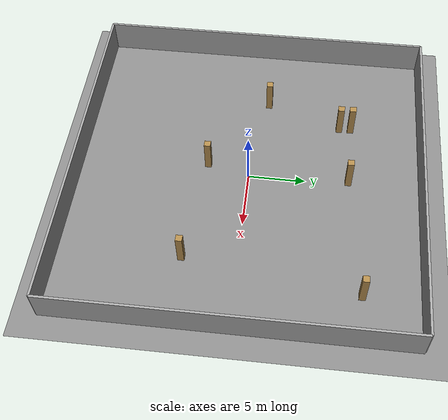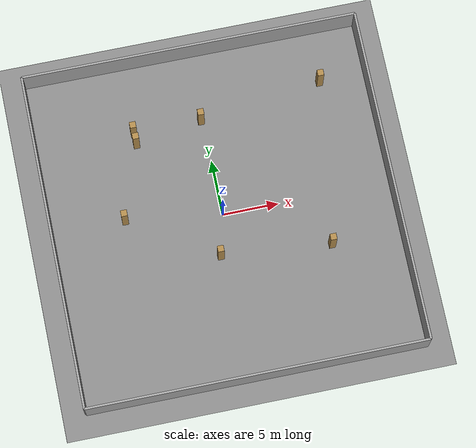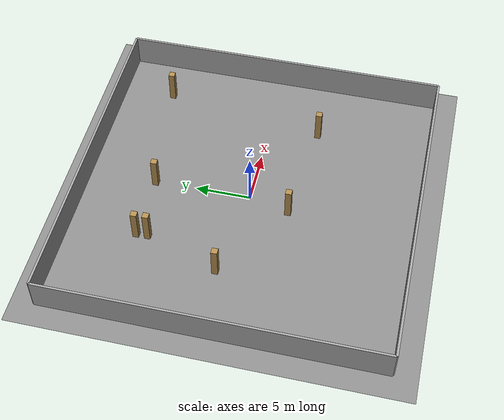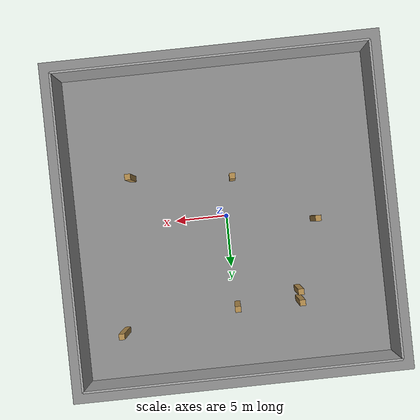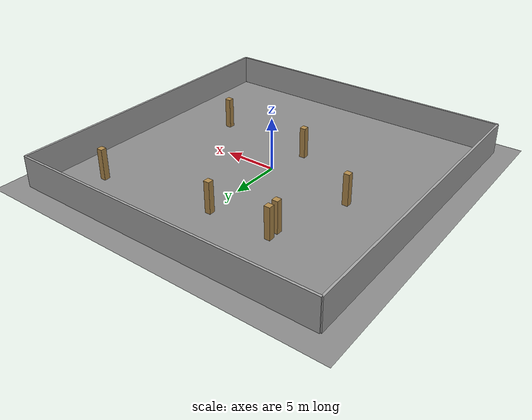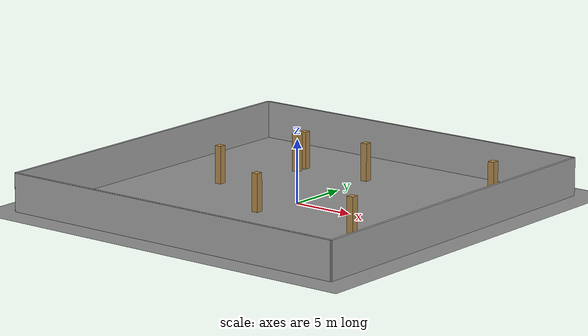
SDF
<?xml version="1.0"?>
<sdf version="1.6">
  <world name="hall_normal_medium_1">
    <physics name="default_physics" type="ode">
      <real_time_update_rate>1000</real_time_update_rate>
      <max_step_size>0.001</max_step_size>
    </physics>
    <scene>
      <ambient>0.35750000000000004 0.35750000000000004 0.35750000000000004 1</ambient>
      <background>0.08 0.09 0.12 1</background>
      <shadows>true</shadows>
    </scene>
    <light name="sun" type="directional">
      <cast_shadows>true</cast_shadows>
      <pose>0 0 20 0 0 0</pose>
      <diffuse>0.65 0.65 0.65 1.0</diffuse>
      <specular>0.65 0.65 0.65 1.0</specular>
      <direction>-0.5 0.2 -1</direction>
    </light>
    <model name="ground_plane">
      <static>true</static>
      <link name="link">
        <collision name="collision"><geometry><plane><normal>0 0 1</normal><size>100 100</size></plane></geometry></collision>
        <visual name="visual">
          <geometry><plane><normal>0 0 1</normal><size>100 100</size></plane></geometry>
          <material><ambient>0.35 0.35 0.35 1</ambient><diffuse>0.55 0.55 0.55 1</diffuse></material>
        </visual>
      </link>
    </model>

    <model name="hall_north">
      <static>true</static>
      <pose>0.0000 15.0000 1.5000 0 0 0</pose>
      <link name="link">
        <collision name="collision"><geometry><box><size>30 0.2 3</size></box></geometry></collision>
        <visual name="visual">
          <geometry><box><size>30 0.2 3</size></box></geometry>
          <material><ambient>0.65 0.65 0.65 1</ambient><diffuse>0.65 0.65 0.65 1</diffuse></material>
        </visual>
      </link>
    </model>

    <model name="hall_south">
      <static>true</static>
      <pose>0.0000 -15.0000 1.5000 0 0 0</pose>
      <link name="link">
        <collision name="collision"><geometry><box><size>30 0.2 3</size></box></geometry></collision>
        <visual name="visual">
          <geometry><box><size>30 0.2 3</size></box></geometry>
          <material><ambient>0.65 0.65 0.65 1</ambient><diffuse>0.65 0.65 0.65 1</diffuse></material>
        </visual>
      </link>
    </model>

    <model name="hall_east">
      <static>true</static>
      <pose>15.0000 0.0000 1.5000 0 0 0</pose>
      <link name="link">
        <collision name="collision"><geometry><box><size>0.2 30 3</size></box></geometry></collision>
        <visual name="visual">
          <geometry><box><size>0.2 30 3</size></box></geometry>
          <material><ambient>0.65 0.65 0.65 1</ambient><diffuse>0.65 0.65 0.65 1</diffuse></material>
        </visual>
      </link>
    </model>

    <model name="hall_west">
      <static>true</static>
      <pose>-15.0000 0.0000 1.5000 0 0 0</pose>
      <link name="link">
        <collision name="collision"><geometry><box><size>0.2 30 3</size></box></geometry></collision>
        <visual name="visual">
          <geometry><box><size>0.2 30 3</size></box></geometry>
          <material><ambient>0.65 0.65 0.65 1</ambient><diffuse>0.65 0.65 0.65 1</diffuse></material>
        </visual>
      </link>
    </model>

    <model name="hall_column_0">
      <static>true</static>
      <pose>-0.9457 -3.6790 1.5000 0 0 0</pose>
      <link name="link">
        <collision name="collision"><geometry><box><size>0.55 0.55 3</size></box></geometry></collision>
        <visual name="visual">
          <geometry><box><size>0.55 0.55 3</size></box></geometry>
          <material><ambient>0.70 0.55 0.30 1</ambient><diffuse>0.70 0.55 0.30 1</diffuse></material>
        </visual>
      </link>
    </model>

    <model name="hall_column_1">
      <static>true</static>
      <pose>10.8553 10.1946 1.5000 0 0 0</pose>
      <link name="link">
        <collision name="collision"><geometry><box><size>0.55 0.55 3</size></box></geometry></collision>
        <visual name="visual">
          <geometry><box><size>0.55 0.55 3</size></box></geometry>
          <material><ambient>0.70 0.55 0.30 1</ambient><diffuse>0.70 0.55 0.30 1</diffuse></material>
        </visual>
      </link>
    </model>

    <model name="hall_column_2">
      <static>true</static>
      <pose>-6.2516 8.7788 1.5000 0 0 0</pose>
      <link name="link">
        <collision name="collision"><geometry><box><size>0.55 0.55 3</size></box></geometry></collision>
        <visual name="visual">
          <geometry><box><size>0.55 0.55 3</size></box></geometry>
          <material><ambient>0.70 0.55 0.30 1</ambient><diffuse>0.70 0.55 0.30 1</diffuse></material>
        </visual>
      </link>
    </model>

    <model name="hall_column_3">
      <static>true</static>
      <pose>-6.2147 7.7450 1.5000 0 0 0</pose>
      <link name="link">
        <collision name="collision"><geometry><box><size>0.55 0.55 3</size></box></geometry></collision>
        <visual name="visual">
          <geometry><box><size>0.55 0.55 3</size></box></geometry>
          <material><ambient>0.70 0.55 0.30 1</ambient><diffuse>0.70 0.55 0.30 1</diffuse></material>
        </visual>
      </link>
    </model>

    <model name="hall_column_4">
      <static>true</static>
      <pose>8.7915 -4.5867 1.5000 0 0 0</pose>
      <link name="link">
        <collision name="collision"><geometry><box><size>0.55 0.55 3</size></box></geometry></collision>
        <visual name="visual">
          <geometry><box><size>0.55 0.55 3</size></box></geometry>
          <material><ambient>0.70 0.55 0.30 1</ambient><diffuse>0.70 0.55 0.30 1</diffuse></material>
        </visual>
      </link>
    </model>

    <model name="hall_column_5">
      <static>true</static>
      <pose>-8.5083 1.0859 1.5000 0 0 0</pose>
      <link name="link">
        <collision name="collision"><geometry><box><size>0.55 0.55 3</size></box></geometry></collision>
        <visual name="visual">
          <geometry><box><size>0.55 0.55 3</size></box></geometry>
          <material><ambient>0.70 0.55 0.30 1</ambient><diffuse>0.70 0.55 0.30 1</diffuse></material>
        </visual>
      </link>
    </model>

    <model name="hall_column_6">
      <static>true</static>
      <pose>-0.1984 8.7598 1.5000 0 0 0</pose>
      <link name="link">
        <collision name="collision"><geometry><box><size>0.55 0.55 3</size></box></geometry></collision>
        <visual name="visual">
          <geometry><box><size>0.55 0.55 3</size></box></geometry>
          <material><ambient>0.70 0.55 0.30 1</ambient><diffuse>0.70 0.55 0.30 1</diffuse></material>
        </visual>
      </link>
    </model>
  </world>
</sdf>
